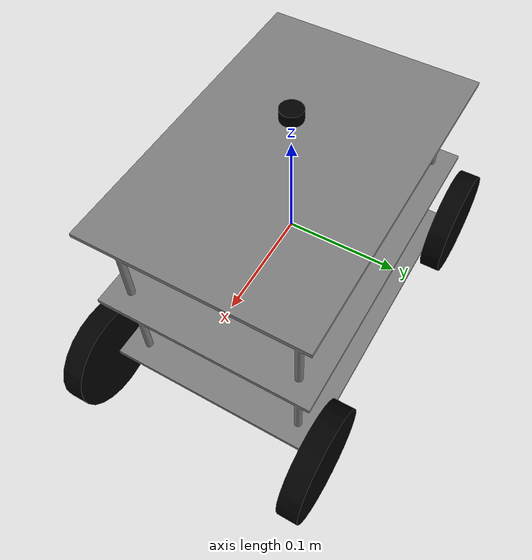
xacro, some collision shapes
<?xml version="1.0"?>
<robot xmlns:xacro="http://www.ros.org/wiki/xacro" name="msd700_prototype">
    <!-- Chassis Property -->
    <xacro:property name="chassis_length" value="0.3"/>
    <xacro:property name="chassis_width" value="0.2"/>
    <xacro:property name="chassis_height" value="0.184"/>

    <!-- Wheel Property -->
    <xacro:property name="wheel_radius" value="0.054"/>
    <xacro:property name="wheel_width" value="0.02"/>

    <!-- Includes -->
    <xacro:include filename="$(find msd700_description)/urdf/common/inertials.xacro"/>
    <xacro:include filename="$(find msd700_description)/urdf/common/materials.xacro"/>
    <xacro:include filename="$(find msd700_description)/urdf/common/wheel.urdf.xacro"/>
    <xacro:include filename="$(find msd700_description)/urdf/sensors/2d_lidar.urdf.xacro"/>
    <xacro:include filename="$(find msd700_description)/urdf/sensors/imu.urdf.xacro"/>

    <link name="base_link" />

    <joint name="base_to_chassis_joint" type="fixed">
        <origin xyz="0 0 0" rpy="0 0 0"/>
        <parent link="base_link"/>
        <child link="chassis_link"/>
    </joint>

    <link name="chassis_link">
        <visual>
            <origin xyz="-0.15 -0.1 -0.092" rpy="0 0 0"/>
            <geometry>
                <mesh filename="package://msd700_description/meshes/msd700_without_arm.stl" scale="0.001 0.001 0.001" />
            </geometry>
            <material name="grey"/>
        </visual>
        <collision>
            <origin xyz="0 0 0" rpy="0 0 0"/>
            <geometry>
                <box size="${chassis_length} ${chassis_width} ${chassis_height}" />
            </geometry>
        </collision>
        <xacro:box_inertial m="1" w="${chassis_width}" l="${chassis_length}" d="${chassis_height}" xyz="0 0 0" rpy="0 0 0"/>
    </link>

    <gazebo reference="chassis_link">
        <material>Gazebo/Grey</material>
    </gazebo>

    <xacro:include filename="$(find msd700_description)/urdf/control/msd700_prototype_control.xacro"/>

    <xacro:add_wheel prefix="bl_wheel" radius="${wheel_radius}" thickness="${wheel_width}" xyz="-${chassis_length/2} ${chassis_width/2 + wheel_width/2} -${chassis_height/2}" parent="chassis_link"/>
    <xacro:add_wheel prefix="br_wheel" radius="${wheel_radius}" thickness="${wheel_width}" xyz="-${chassis_length/2} -${chassis_width/2 + wheel_width/2} -${chassis_height/2}" parent="chassis_link"/>
    <xacro:add_caster_wheel prefix="fl_wheel" radius="${wheel_radius}" thickness="${wheel_width}" xyz="${chassis_length/2} ${chassis_width/2 + wheel_width/2} -${chassis_height/2}" parent="chassis_link"/>
    <xacro:add_caster_wheel prefix="fr_wheel" radius="${wheel_radius}" thickness="${wheel_width}" xyz="${chassis_length/2} -${chassis_width/2 + wheel_width/2} -${chassis_height/2}" parent="chassis_link"/>

    <xacro:add_2d_lidar prefix="lidar" topic="/msd700/sensors/scan" parent="chassis_link" x="0" y="0" z="${chassis_height/2}" rpy="0 0 0"/>

</robot>

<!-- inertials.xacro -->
<robot xmlns:xacro="http://www.ros.org/wiki/xacro">
    <xacro:macro name="box_inertial" params="m w l d xyz rpy">
        <inertial>
            <mass value="${m}"/>
            <origin xyz="${xyz}" rpy="${rpy}"/>
            <inertia ixx="${m*(w*w + d*d)/12}" ixy="0" ixz="0" iyy="${m*(l*l + d*d)/12}" iyz="0" izz="${m*(w*w + l*l)/12}"/>
        </inertial>
    </xacro:macro>

    <xacro:macro name="cylinder_inertial" params="m r l xyz rpy">
        <inertial>
            <mass value="${m}"/>
            <origin xyz="${xyz}" rpy="${rpy}"/>
            <inertia ixx="${m*(3*r*r + l*l)/12}" ixy="0" ixz="0" iyy="${m*(3*r*r + l*l)/12}" iyz="0" izz="${m*r*r/2}"/>
        </inertial>
    </xacro:macro>

</robot>

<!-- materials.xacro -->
<robot xmlns:xacro="http://www.ros.org/wiki/xacro">
    <material name="red">
        <color rgba="1 0 0 1"/>
    </material>

    <material name="black">
        <color rgba="0 0 0 1"/>
    </material>

    <material name="grey">
        <color rgba="0.5 0.5 0.5 1"/>
    </material>

</robot>

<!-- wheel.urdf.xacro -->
<robot xmlns:xacro="http://www.ros.org/wiki/xacro">
    <xacro:macro name="add_wheel" params="prefix radius thickness xyz parent">
        <joint name="${prefix}_joint" type="continuous" >
            <origin xyz="${xyz}" rpy="0 0 0"/>
            <parent link="${parent}"/>
            <child link="${prefix}_link"/>
            <axis xyz="0 1 0"/>
        </joint>

        <link name="${prefix}_link">
            <visual>
                <origin xyz="0 0 0" rpy="-1.5708 0 0"/>
                <geometry>
                    <cylinder radius="${radius}" length="${thickness}"/>
                </geometry>
                <material name="black"/>
            </visual>
            <collision>
                <origin xyz="0 0 0" rpy="-1.5708 0 0"/>
                <geometry>
                    <cylinder radius="${radius}" length="${thickness}"/>
                </geometry>
            </collision>
            <xacro:cylinder_inertial m="0.05" r="${radius}" l="${thickness}" xyz="0 0 0" rpy="0 0 0"/>
        </link>

        <gazebo reference="${prefix}_link">
            <material>Gazebo/Black</material>
            <mu1>0.1</mu1>
            <mu2>0.1</mu2>
        </gazebo>

    </xacro:macro>

    <xacro:macro name="add_caster_wheel" params="prefix radius thickness xyz parent">
        <joint name="${prefix}_joint" type="fixed" >
            <origin xyz="${xyz}" rpy="0 0 0"/>
            <parent link="${parent}"/>
            <child link="${prefix}_link"/>
        </joint>

        <link name="${prefix}_link">
            <visual>
                <origin xyz="0 0 0" rpy="-1.5708 0 0"/>
                <geometry>
                    <cylinder radius="${radius}" length="${thickness}"/>
                </geometry>
                <material name="black"/>
            </visual>
            <collision>
                <origin xyz="0 0 0" rpy="-1.5708 0 0"/>
                <geometry>
                    <cylinder radius="${radius}" length="${thickness}"/>
                </geometry>
            </collision>
            <xacro:cylinder_inertial m="0.05" r="${radius}" l="${thickness}" xyz="0 0 0" rpy="0 0 0"/>
        </link>

        <gazebo reference="${prefix}_link">
            <material>Gazebo/Black</material>
            <mu1>0.0</mu1>
            <mu2>0.0</mu2>
        </gazebo>

    </xacro:macro>
</robot>

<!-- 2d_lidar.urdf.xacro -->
<!--
[2d_lidar.urdf.xacro]
2D Lidar xacro file.
Reference: https://articulatedrobotics.xyz/tutorials/mobile-robot/hardware/lidar

Include this file and make a joint between laser_frame and your link.
-->

<robot xmlns:xacro="http://www.ros.org/wiki/xacro" >

    <xacro:macro name="add_2d_lidar" params="prefix topic parent x y z rpy">
        <joint name="${prefix}_joint" type="fixed">
            <origin xyz="${x} ${y} ${z+0.04}" rpy="${rpy}"/>
            <parent link="${parent}"/>
            <child link="${prefix}_link"/>
        </joint>

        <link name="${prefix}_link">
            <visual>
                <origin xyz="0 0 0" rpy="0 0 0"/>
                <geometry>
                    <mesh filename="package://msd700_description/meshes/rplidar.dae"/>
                </geometry>
                <material name="black"/>
            </visual>
            <collision>
                <origin xyz="0 0 0" rpy="0 0 0"/>
                <geometry>
                    <cylinder radius="0.01" length="0.01"/>
                </geometry>
            </collision>
        </link>

        <gazebo reference="${prefix}_link">
            <material>Gazebo/Black</material>
            <sensor name="${prefix}_sensor" type="ray">
                <pose>0 0 0 0 0 0</pose>
                <visualize>true</visualize>
                <update_rate>5</update_rate>
                <ray>
                    <scan>
                        <horizontal>
                            <samples>360</samples>
                            <resolution>1</resolution>
                            <min_angle>-3.14159</min_angle>
                            <max_angle>3.14159</max_angle>
                        </horizontal>
                    </scan>
                    <range>
                        <min>0.08</min>
                        <max>30.0</max>
                    </range>
                    <noise>
                        <type>gaussian</type>
                        <mean>0.0</mean>
                        <stddev>0.01</stddev>
                    </noise>
                </ray>
                <plugin filename="libgazebo_ros_laser.so" name="gazebo_ros_laser">
                    <frameName>${prefix}_link</frameName>
                    <topicName>${topic}</topicName>
                    <outputType>sensor_msgs/LaserScan</outputType>
                    <visualizeScan>true</visualizeScan>
                </plugin>
            </sensor>
        </gazebo>
    </xacro:macro>
</robot>
